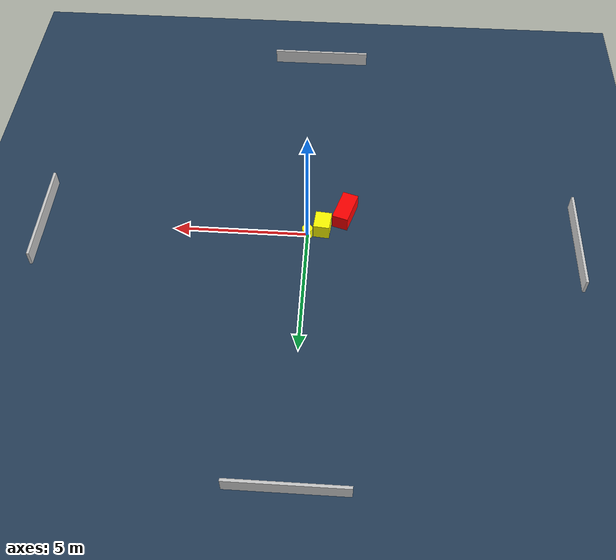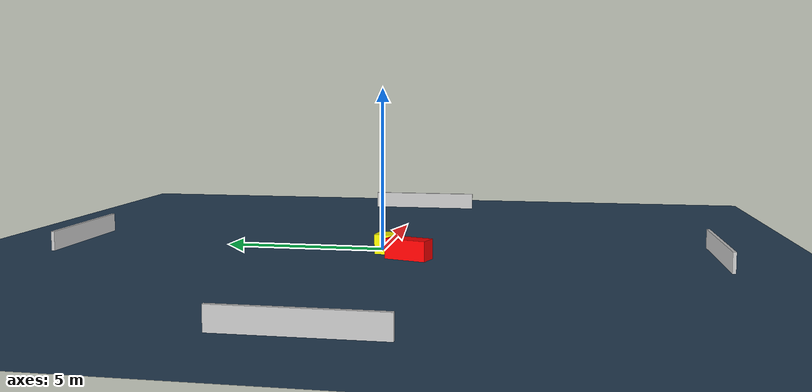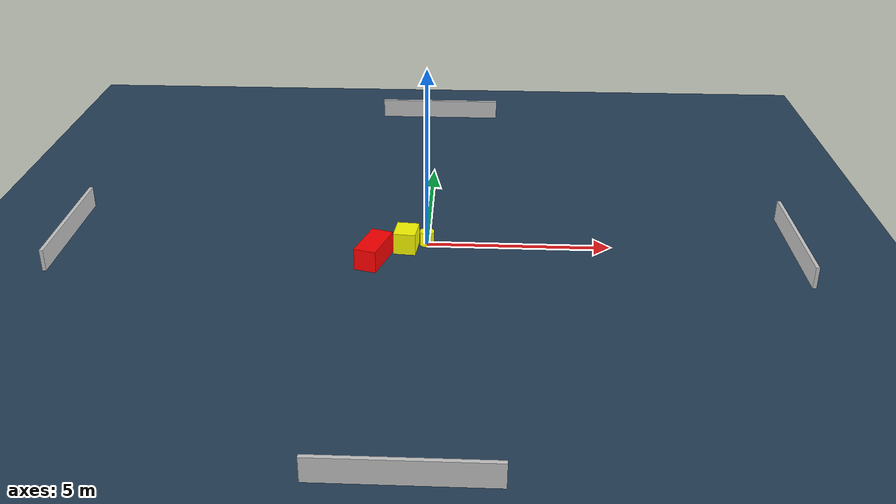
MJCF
<?xml version="1.0" ?>
<mujoco model="generated_environment">
  <option timestep="0.01" integrator="RK4" cone="elliptic"/>
  <default>
    <geom density="1"/>
  </default>
  <asset>
    <texture builtin="gradient" height="3072" name="skybox" rgb1="0.3 0.5 0.7" rgb2="0 0 0" type="skybox" width="512"/>
    <texture builtin="checker" height="300" name="groundplane" rgb1="0.2 0.3 0.4" rgb2="0.1 0.2 0.3" type="2d" width="300"/>
    <material name="groundplane" reflectance="0.2" texrepeat="5 5" texture="groundplane"/>
  </asset>
  <worldbody>
    <light dir="0 0 -1" directional="true" pos="0 0 1.5"/>
    <geom condim="3" friction="0.5 0.005 0.001" material="groundplane" name="floor" pos="0 0 0" size="0 0 0.05" type="plane"/>
    <body name="walls">
      <geom name="wall_1" condim="4" pos="-10.0 0.0 0.3" rgba="0.800000011920929 0.800000011920929 0.800000011920929 1.0" size="0.05 2.0 0.3" type="box"/>
      <geom name="wall_2" condim="4" pos="10.0 0.0 0.3" rgba="0.800000011920929 0.800000011920929 0.800000011920929 1.0" size="0.05 2.0 0.3" type="box"/>
      <geom name="wall_3" condim="4" pos="0.0 -10.0 0.3" rgba="0.800000011920929 0.800000011920929 0.800000011920929 1.0" size="2.0 0.05 0.3" type="box"/>
      <geom name="wall_4" condim="4" pos="0.0 10.0 0.3" rgba="0.800000011920929 0.800000011920929 0.800000011920929 1.0" size="2.0 0.05 0.3" type="box"/>
    </body>
    <body name="robot">
      <joint name="joint_x" type="slide" pos="0 0 0" axis="1 0 0"/>
      <joint name="joint_y" type="slide" pos="0 0 0" axis="0 1 0"/>
      <geom name="robot" type="cylinder" pos="0.0 0.0 0.2" size="0.2 0.2 0.0" mass="5.0" friction="1.0 0.005 0.0001" condim="4" rgba="1.0 1.0 0.0 1.0"/>
    </body>
    <body name="obstacle_1_movable">
      <geom name="obstacle_1_movable" condim="4" pos="-0.5527350419788571 -0.27735969390967574 0.3" euler="0 0 264.348942828018" friction="0.0 0.005 0.001" rgba="1.0 1.0 0.0 1.0" size="0.37117729506540587 0.30063646651721143 0.3" type="box" mass="0.1"/>
      <joint type="free"/>
    </body>
    <body name="obstacle_2_static">
      <geom name="obstacle_2_static" condim="4" pos="-1.3771050354066843 -1.0118027732384165 0.3" euler="0 0 252.86063136559898" friction="0.0 0.005 0.001" rgba="1.0 0.0 0.0 1.0" size="0.6379001388554912 0.30174697952328444 0.3" type="box"/>
    </body>
  </worldbody>
  <actuator>
    <motor name="actuator_x" joint="joint_x" gear="1" ctrlrange="-1 1"/>
    <motor name="actuator_y" joint="joint_y" gear="1" ctrlrange="-1 1"/>
  </actuator>
</mujoco>
